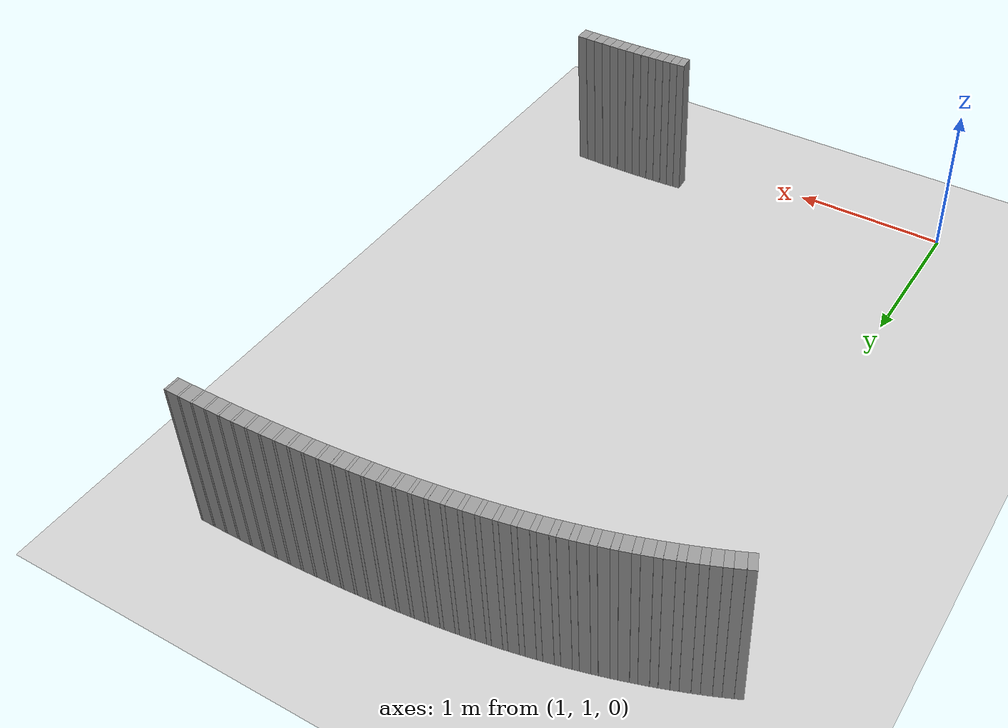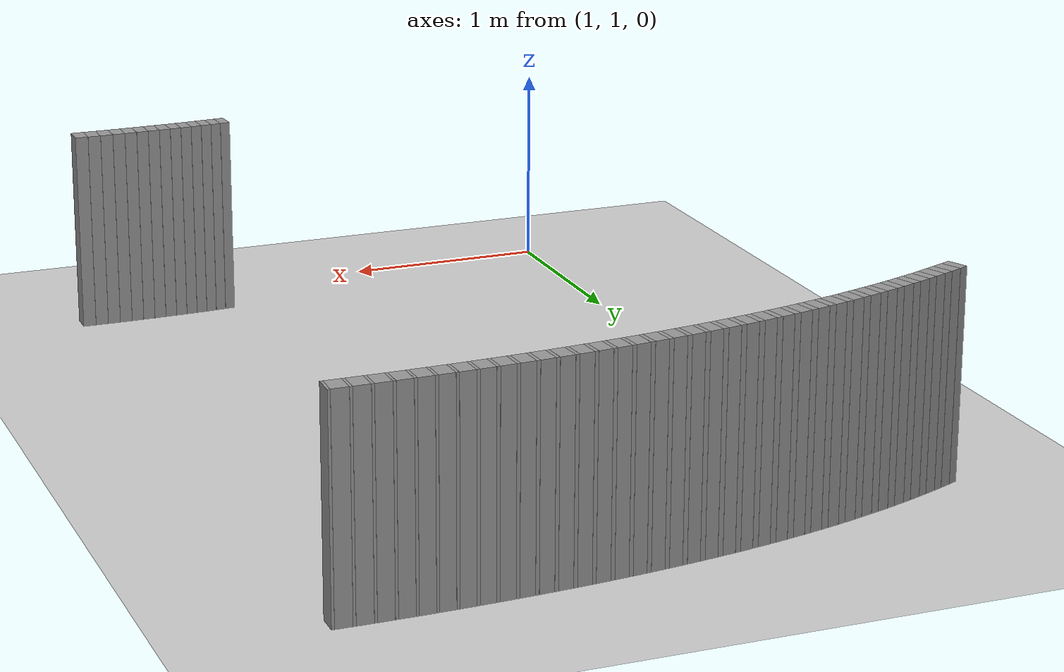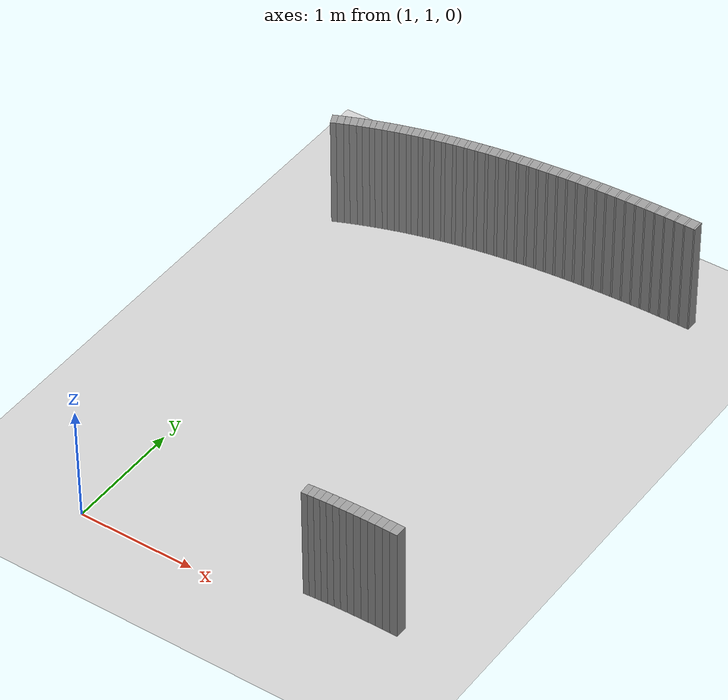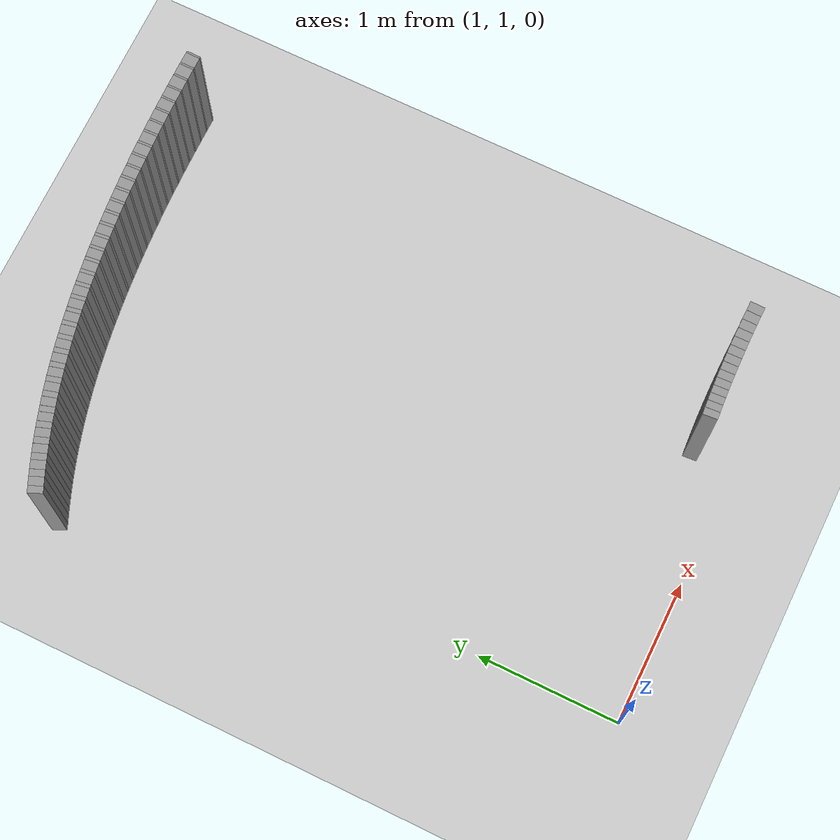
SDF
<sdf version="1.6">
 <world name="default">
  <include><uri>model://ground_plane</uri></include>
  <include><uri>model://sun</uri></include>
  <model name="wall_119_outward">
   <static>true</static>
   <link name="link">
    <collision name="collision">
     <geometry><box><size>0.04762265644965786 0.1 1.0</size></box></geometry>
    </collision>
    <visual name="visual">
     <geometry><box><size>0.04762265644965786 0.1 1.0</size></box></geometry>
     <material>
      <script><uri>file://media/materials/scripts/gazebo.material</uri><name>Gazebo/Gray</name></script>
     </material>
    </visual>
   </link>
   <pose>0.5797833847505576 4.842832066262517 0.5 0 0 0.4146070068785347</pose>
  </model>
  <model name="wall_120_outward">
   <static>true</static>
   <link name="link">
    <collision name="collision">
     <geometry><box><size>0.05895322775954115 0.1 1.0</size></box></geometry>
    </collision>
    <visual name="visual">
     <geometry><box><size>0.05895322775954115 0.1 1.0</size></box></geometry>
     <material>
      <script><uri>file://media/materials/scripts/gazebo.material</uri><name>Gazebo/Gray</name></script>
     </material>
    </visual>
   </link>
   <pose>0.6286959465770047 4.863976015238602 0.5 0 0 0.4027010614870918</pose>
  </model>
  <model name="wall_121_outward">
   <static>true</static>
   <link name="link">
    <collision name="collision">
     <geometry><box><size>0.04657145449106034 0.1 1.0</size></box></geometry>
    </collision>
    <visual name="visual">
     <geometry><box><size>0.04657145449106034 0.1 1.0</size></box></geometry>
     <material>
      <script><uri>file://media/materials/scripts/gazebo.material</uri><name>Gazebo/Gray</name></script>
     </material>
    </visual>
   </link>
   <pose>0.6773424042749305 4.88440378427007 0.5 0 0 0.391057934804424</pose>
  </model>
  <model name="wall_122_outward">
   <static>true</static>
   <link name="link">
    <collision name="collision">
     <geometry><box><size>0.05882232847072643 0.1 1.0</size></box></geometry>
    </collision>
    <visual name="visual">
     <geometry><box><size>0.05882232847072643 0.1 1.0</size></box></geometry>
     <material>
      <script><uri>file://media/materials/scripts/gazebo.material</uri><name>Gazebo/Gray</name></script>
     </material>
    </visual>
   </link>
   <pose>0.7261896938768626 4.904172745548577 0.5 0 0 0.3794148081217399</pose>
  </model>
  <model name="wall_123_outward">
   <static>true</static>
   <link name="link">
    <collision name="collision">
     <geometry><box><size>0.0452449672787888 0.1 1.0</size></box></geometry>
    </collision>
    <visual name="visual">
     <geometry><box><size>0.0452449672787888 0.1 1.0</size></box></geometry>
     <material>
      <script><uri>file://media/materials/scripts/gazebo.material</uri><name>Gazebo/Gray</name></script>
     </material>
    </visual>
   </link>
   <pose>0.7746162194824742 4.923206583786676 0.5 0 0 0.36810332508687804</pose>
  </model>
  <model name="wall_124_outward">
   <static>true</static>
   <link name="link">
    <collision name="collision">
     <geometry><box><size>0.05879685199204302 0.1 1.0</size></box></geometry>
    </collision>
    <visual name="visual">
     <geometry><box><size>0.05879685199204302 0.1 1.0</size></box></geometry>
     <material>
      <script><uri>file://media/materials/scripts/gazebo.material</uri><name>Gazebo/Gray</name></script>
     </material>
    </visual>
   </link>
   <pose>0.823270234207086 4.9416151903742245 0.5 0 0 0.35679184205200604</pose>
  </model>
  <model name="wall_125_outward">
   <static>true</static>
   <link name="link">
    <collision name="collision">
     <geometry><box><size>0.043774570305771414 0.1 1.0</size></box></geometry>
    </collision>
    <visual name="visual">
     <geometry><box><size>0.043774570305771414 0.1 1.0</size></box></geometry>
     <material>
      <script><uri>file://media/materials/scripts/gazebo.material</uri><name>Gazebo/Gray</name></script>
     </material>
    </visual>
   </link>
   <pose>0.8714085131880618 4.959302847103714 0.5 0 0 0.3458479810226367</pose>
  </model>
  <model name="wall_126_outward">
   <static>true</static>
   <link name="link">
    <collision name="collision">
     <geometry><box><size>0.05886785435195718 0.1 1.0</size></box></geometry>
    </collision>
    <visual name="visual">
     <geometry><box><size>0.05886785435195718 0.1 1.0</size></box></geometry>
     <material>
      <script><uri>file://media/materials/scripts/gazebo.material</uri><name>Gazebo/Gray</name></script>
     </material>
    </visual>
   </link>
   <pose>0.9197984476116005 4.976396820430873 0.5 0 0 0.33490411999326986</pose>
  </model>
  <model name="wall_127_outward">
   <static>true</static>
   <link name="link">
    <collision name="collision">
     <geometry><box><size>0.042147625095521085 0.1 1.0</size></box></geometry>
    </collision>
    <visual name="visual">
     <geometry><box><size>0.042147625095521085 0.1 1.0</size></box></geometry>
     <material>
      <script><uri>file://media/materials/scripts/gazebo.material</uri><name>Gazebo/Gray</name></script>
     </material>
    </visual>
   </link>
   <pose>0.9675719487225262 4.992787534072441 0.5 0 0 0.3243670187305457</pose>
  </model>
  <model name="wall_128_outward">
   <static>true</static>
   <link name="link">
    <collision name="collision">
     <geometry><box><size>0.059025569022138645 0.1 1.0</size></box></geometry>
    </collision>
    <visual name="visual">
     <geometry><box><size>0.059025569022138645 0.1 1.0</size></box></geometry>
     <material>
      <script><uri>file://media/materials/scripts/gazebo.material</uri><name>Gazebo/Gray</name></script>
     </material>
    </visual>
   </link>
   <pose>1.0156181459933904 5.008614652425592 0.5 0 0 0.3138299174678047</pose>
  </model>
  <model name="wall_129_outward">
   <static>true</static>
   <link name="link">
    <collision name="collision">
     <geometry><box><size>0.04051001720465164 0.1 1.0</size></box></geometry>
    </collision>
    <visual name="visual">
     <geometry><box><size>0.04051001720465164 0.1 1.0</size></box></geometry>
     <material>
      <script><uri>file://media/materials/scripts/gazebo.material</uri><name>Gazebo/Gray</name></script>
     </material>
    </visual>
   </link>
   <pose>1.063017529637495 5.023782722430736 0.5 0 0 0.30370224003510615</pose>
  </model>
  <model name="wall_130_outward">
   <static>true</static>
   <link name="link">
    <collision name="collision">
     <geometry><box><size>0.05925627961401525 0.1 1.0</size></box></geometry>
    </collision>
    <visual name="visual">
     <geometry><box><size>0.05925627961401525 0.1 1.0</size></box></geometry>
     <material>
      <script><uri>file://media/materials/scripts/gazebo.material</uri><name>Gazebo/Gray</name></script>
     </material>
    </visual>
   </link>
   <pose>1.1107061028129799 5.038413748717486 0.5 0 0 0.2935745626024684</pose>
  </model>
  <model name="wall_131_outward">
   <static>true</static>
   <link name="link">
    <collision name="collision">
     <geometry><box><size>0.03879464730142519 0.1 1.0</size></box></geometry>
    </collision>
    <visual name="visual">
     <geometry><box><size>0.03879464730142519 0.1 1.0</size></box></geometry>
     <material>
      <script><uri>file://media/materials/scripts/gazebo.material</uri><name>Gazebo/Gray</name></script>
     </material>
    </visual>
   </link>
   <pose>1.1576876077202063 5.052420183074534 0.5 0 0 0.2838757487214525</pose>
  </model>
  <model name="wall_132_outward">
   <static>true</static>
   <link name="link">
    <collision name="collision">
     <geometry><box><size>0.05954619953206322 0.1 1.0</size></box></geometry>
    </collision>
    <visual name="visual">
     <geometry><box><size>0.05954619953206322 0.1 1.0</size></box></geometry>
     <material>
      <script><uri>file://media/materials/scripts/gazebo.material</uri><name>Gazebo/Gray</name></script>
     </material>
    </visual>
   </link>
   <pose>1.2049696209902983 5.065914160809498 0.5 0 0 0.2741769348404339</pose>
  </model>
  <model name="wall_133_outward">
   <static>true</static>
   <link name="link">
    <collision name="collision">
     <geometry><box><size>0.03710291891183191 0.1 1.0</size></box></geometry>
    </collision>
    <visual name="visual">
     <geometry><box><size>0.03710291891183191 0.1 1.0</size></box></geometry>
     <material>
      <script><uri>file://media/materials/scripts/gazebo.material</uri><name>Gazebo/Gray</name></script>
     </material>
    </visual>
   </link>
   <pose>1.25153500200694 5.078832395648469 0.5 0 0 0.26490107209464114</pose>
  </model>
  <model name="wall_134_outward">
   <static>true</static>
   <link name="link">
    <collision name="collision">
     <geometry><box><size>0.05988438573667741 0.1 1.0</size></box></geometry>
    </collision>
    <visual name="visual">
     <geometry><box><size>0.05988438573667741 0.1 1.0</size></box></geometry>
     <material>
      <script><uri>file://media/materials/scripts/gazebo.material</uri><name>Gazebo/Gray</name></script>
     </material>
    </visual>
   </link>
   <pose>1.2984085902910325 5.0912603175905815 0.5 0 0 0.2556252093488861</pose>
  </model>
  <model name="wall_135_outward">
   <static>true</static>
   <link name="link">
    <collision name="collision">
     <geometry><box><size>0.03538726925947709 0.1 1.0</size></box></geometry>
    </collision>
    <visual name="visual">
     <geometry><box><size>0.03538726925947709 0.1 1.0</size></box></geometry>
     <material>
      <script><uri>file://media/materials/scripts/gazebo.material</uri><name>Gazebo/Gray</name></script>
     </material>
    </visual>
   </link>
   <pose>1.344535419987682 5.103153432338603 0.5 0 0 0.24677827662886828</pose>
  </model>
  <model name="wall_136_outward">
   <static>true</static>
   <link name="link">
    <collision name="collision">
     <geometry><box><size>0.06026037292160499 0.1 1.0</size></box></geometry>
    </collision>
    <visual name="visual">
     <geometry><box><size>0.06026037292160499 0.1 1.0</size></box></geometry>
     <material>
      <script><uri>file://media/materials/scripts/gazebo.material</uri><name>Gazebo/Gray</name></script>
     </material>
    </visual>
   </link>
   <pose>1.3909743638176582 5.114577119753884 0.5 0 0 0.23793134390880907</pose>
  </model>
  <model name="wall_137_outward">
   <static>true</static>
   <link name="link">
    <collision name="collision">
     <geometry><box><size>0.033659648572413735 0.1 1.0</size></box></geometry>
    </collision>
    <visual name="visual">
     <geometry><box><size>0.033659648572413735 0.1 1.0</size></box></geometry>
     <material>
      <script><uri>file://media/materials/scripts/gazebo.material</uri><name>Gazebo/Gray</name></script>
     </material>
    </visual>
   </link>
   <pose>1.436644199421238 5.1255074819411846 0.5 0 0 0.22951633245152978</pose>
  </model>
  <model name="wall_138_outward">
   <static>true</static>
   <link name="link">
    <collision name="collision">
     <geometry><box><size>0.0606666162380814 0.1 1.0</size></box></geometry>
    </collision>
    <visual name="visual">
     <geometry><box><size>0.0606666162380814 0.1 1.0</size></box></geometry>
     <material>
      <script><uri>file://media/materials/scripts/gazebo.material</uri><name>Gazebo/Gray</name></script>
     </material>
    </visual>
   </link>
   <pose>1.4826275773306308 5.135988601370437 0.5 0 0 0.22110132099422455</pose>
  </model>
  <model name="wall_139_outward">
   <static>true</static>
   <link name="link">
    <collision name="collision">
     <geometry><box><size>0.0319424232112226 0.1 1.0</size></box></geometry>
    </collision>
    <visual name="visual">
     <geometry><box><size>0.0319424232112226 0.1 1.0</size></box></geometry>
     <material>
      <script><uri>file://media/materials/scripts/gazebo.material</uri><name>Gazebo/Gray</name></script>
     </material>
    </visual>
   </link>
   <pose>1.5278323569214356 5.146018833403613 0.5 0 0 0.21311563031542954</pose>
  </model>
  <model name="wall_140_outward">
   <static>true</static>
   <link name="link">
    <collision name="collision">
     <geometry><box><size>0.061098177029552524 0.1 1.0</size></box></geometry>
    </collision>
    <visual name="visual">
     <geometry><box><size>0.061098177029552524 0.1 1.0</size></box></geometry>
     <material>
      <script><uri>file://media/materials/scripts/gazebo.material</uri><name>Gazebo/Gray</name></script>
     </material>
    </visual>
   </link>
   <pose>1.5733508591310152 5.155619519091482 0.5 0 0 0.20512993963664014</pose>
  </model>
  <model name="wall_141_outward">
   <static>true</static>
   <link name="link">
    <collision name="collision">
     <geometry><box><size>0.030238337913072164 0.1 1.0</size></box></geometry>
    </collision>
    <visual name="visual">
     <geometry><box><size>0.030238337913072164 0.1 1.0</size></box></geometry>
     <material>
      <script><uri>file://media/materials/scripts/gazebo.material</uri><name>Gazebo/Gray</name></script>
     </material>
    </visual>
   </link>
   <pose>1.6180845180991499 5.164809899953543 0.5 0 0 0.1975702831548393</pose>
  </model>
  <model name="wall_142_outward">
   <static>true</static>
   <link name="link">
    <collision name="collision">
     <geometry><box><size>0.0615530927524307 0.1 1.0</size></box></geometry>
    </collision>
    <visual name="visual">
     <geometry><box><size>0.0615530927524307 0.1 1.0</size></box></geometry>
     <material>
      <script><uri>file://media/materials/scripts/gazebo.material</uri><name>Gazebo/Gray</name></script>
     </material>
    </visual>
   </link>
   <pose>1.6631322018250836 5.173590348968443 0.5 0 0 0.19001062667307594</pose>
  </model>
  <model name="wall_143_outward">
   <static>true</static>
   <link name="link">
    <collision name="collision">
     <geometry><box><size>0.028532402801629907 0.1 1.0</size></box></geometry>
    </collision>
    <visual name="visual">
     <geometry><box><size>0.028532402801629907 0.1 1.0</size></box></geometry>
     <material>
      <script><uri>file://media/materials/scripts/gazebo.material</uri><name>Gazebo/Gray</name></script>
     </material>
    </visual>
   </link>
   <pose>1.7073831438584124 5.181997543274074 0.5 0 0 0.18287746548124814</pose>
  </model>
  <model name="wall_144_outward">
   <static>true</static>
   <link name="link">
    <collision name="collision">
     <geometry><box><size>0.06203019131444678 0.1 1.0</size></box></geometry>
    </collision>
    <visual name="visual">
     <geometry><box><size>0.06203019131444678 0.1 1.0</size></box></geometry>
     <material>
      <script><uri>file://media/materials/scripts/gazebo.material</uri><name>Gazebo/Gray</name></script>
     </material>
    </visual>
   </link>
   <pose>1.7519488088886959 5.190014703003735 0.5 0 0 0.17574430428942667</pose>
  </model>
  <model name="wall_145_outward">
   <static>true</static>
   <link name="link">
    <collision name="collision">
     <geometry><box><size>0.026872211705928677 0.1 1.0</size></box></geometry>
    </collision>
    <visual name="visual">
     <geometry><box><size>0.026872211705928677 0.1 1.0</size></box></geometry>
     <material>
      <script><uri>file://media/materials/scripts/gazebo.material</uri><name>Gazebo/Gray</name></script>
     </material>
    </visual>
   </link>
   <pose>1.7957307975705448 5.1976976695498935 0.5 0 0 0.1690262008284723</pose>
  </model>
  <model name="wall_146_outward">
   <static>true</static>
   <link name="link">
    <collision name="collision">
     <geometry><box><size>0.06252992379287395 0.1 1.0</size></box></geometry>
    </collision>
    <visual name="visual">
     <geometry><box><size>0.06252992379287395 0.1 1.0</size></box></geometry>
     <material>
      <script><uri>file://media/materials/scripts/gazebo.material</uri><name>Gazebo/Gray</name></script>
     </material>
    </visual>
   </link>
   <pose>1.8398294705206024 5.205010230157988 0.5 0 0 0.16230809736749488</pose>
  </model>
  <model name="wall_147_outward">
   <static>true</static>
   <link name="link">
    <collision name="collision">
     <geometry><box><size>0.025281368365310496 0.1 1.0</size></box></geometry>
    </collision>
    <visual name="visual">
     <geometry><box><size>0.025281368365310496 0.1 1.0</size></box></geometry>
     <material>
      <script><uri>file://media/materials/scripts/gazebo.material</uri><name>Gazebo/Gray</name></script>
     </material>
    </visual>
   </link>
   <pose>1.883170723045893 5.212026340165581 0.5 0 0 0.15598771319593382</pose>
  </model>
  <model name="wall_148_outward">
   <static>true</static>
   <link name="link">
    <collision name="collision">
     <geometry><box><size>0.0630532704960234 0.1 1.0</size></box></geometry>
    </collision>
    <visual name="visual">
     <geometry><box><size>0.0630532704960234 0.1 1.0</size></box></geometry>
     <material>
      <script><uri>file://media/materials/scripts/gazebo.material</uri><name>Gazebo/Gray</name></script>
     </material>
    </visual>
   </link>
   <pose>1.9268321218902538 5.218691055987509 0.5 0 0 0.1496673290243324</pose>
  </model>
  <model name="wall_149_outward">
   <static>true</static>
   <link name="link">
    <collision name="collision">
     <geometry><box><size>0.023785309874644202 0.1 1.0</size></box></geometry>
    </collision>
    <visual name="visual">
     <geometry><box><size>0.023785309874644202 0.1 1.0</size></box></geometry>
     <material>
      <script><uri>file://media/materials/scripts/gazebo.material</uri><name>Gazebo/Gray</name></script>
     </material>
    </visual>
   </link>
   <pose>1.9697763531498493 5.225095312722985 0.5 0 0 0.14372096651260793</pose>
  </model>
  <model name="wall_150_outward">
   <static>true</static>
   <link name="link">
    <collision name="collision">
     <geometry><box><size>0.06360075275686539 0.1 1.0</size></box></geometry>
    </collision>
    <visual name="visual">
     <geometry><box><size>0.06360075275686539 0.1 1.0</size></box></geometry>
     <material>
      <script><uri>file://media/materials/scripts/gazebo.material</uri><name>Gazebo/Gray</name></script>
     </material>
    </visual>
   </link>
   <pose>2.0130454323510447 5.231166095056553 0.5 0 0 0.13777460400088043</pose>
  </model>
  <model name="wall_151_outward">
   <static>true</static>
   <link name="link">
    <collision name="collision">
     <geometry><box><size>0.02242338525385486 0.1 1.0</size></box></geometry>
    </collision>
    <visual name="visual">
     <geometry><box><size>0.02242338525385486 0.1 1.0</size></box></geometry>
     <material>
      <script><uri>file://media/materials/scripts/gazebo.material</uri><name>Gazebo/Gray</name></script>
     </material>
    </visual>
   </link>
   <pose>2.055658379954457 5.237011056327135 0.5 0 0 0.13216872832590157</pose>
  </model>
  <model name="wall_152_outward">
   <static>true</static>
   <link name="link">
    <collision name="collision">
     <geometry><box><size>0.0641728887554186 0.1 1.0</size></box></geometry>
    </collision>
    <visual name="visual">
     <geometry><box><size>0.0641728887554186 0.1 1.0</size></box></geometry>
     <material>
      <script><uri>file://media/materials/scripts/gazebo.material</uri><name>Gazebo/Gray</name></script>
     </material>
    </visual>
   </link>
   <pose>2.098602093313448 5.24253870011133 0.5 0 0 0.12656285265092393</pose>
  </model>
  <model name="wall_153_outward">
   <static>true</static>
   <link name="link">
    <collision name="collision">
     <geometry><box><size>0.02123787551669319 0.1 1.0</size></box></geometry>
    </collision>
    <visual name="visual">
     <geometry><box><size>0.02123787551669319 0.1 1.0</size></box></geometry>
     <material>
      <script><uri>file://media/materials/scripts/gazebo.material</uri><name>Gazebo/Gray</name></script>
     </material>
    </visual>
   </link>
   <pose>2.140972869249545 5.247873248332778 0.5 0 0 0.12125335882537115</pose>
  </model>
  <model name="wall_154_outward">
   <static>true</static>
   <link name="link">
    <collision name="collision">
     <geometry><box><size>0.06476873711564796 0.1 1.0</size></box></geometry>
    </collision>
    <visual name="visual">
     <geometry><box><size>0.06476873711564796 0.1 1.0</size></box></geometry>
     <material>
      <script><uri>file://media/materials/scripts/gazebo.material</uri><name>Gazebo/Gray</name></script>
     </material>
    </visual>
   </link>
   <pose>2.1836807818766486 5.252904039397849 0.5 0 0 0.11594386499982155</pose>
  </model>
  <model name="wall_155_outward">
   <static>true</static>
   <link name="link">
    <collision name="collision">
     <geometry><box><size>0.020182504089860945 0.1 1.0</size></box></geometry>
    </collision>
    <visual name="visual">
     <geometry><box><size>0.020182504089860945 0.1 1.0</size></box></geometry>
     <material>
      <script><uri>file://media/materials/scripts/gazebo.material</uri><name>Gazebo/Gray</name></script>
     </material>
    </visual>
   </link>
   <pose>2.2258769853785076 5.257767210771512 0.5 0 0 0.1108982175682198</pose>
  </model>
  <model name="wall_156_outward">
   <static>true</static>
   <link name="link">
    <collision name="collision">
     <geometry><box><size>0.06538846888942072 0.1 1.0</size></box></geometry>
    </collision>
    <visual name="visual">
     <geometry><box><size>0.06538846888942072 0.1 1.0</size></box></geometry>
     <material>
      <script><uri>file://media/materials/scripts/gazebo.material</uri><name>Gazebo/Gray</name></script>
     </material>
    </visual>
   </link>
   <pose>2.268417487567723 5.2623383296967114 0.5 0 0 0.10585257013664288</pose>
  </model>
  <model name="wall_157_outward">
   <static>true</static>
   <link name="link">
    <collision name="collision">
     <geometry><box><size>0.019306332068797425 0.1 1.0</size></box></geometry>
    </collision>
    <visual name="visual">
     <geometry><box><size>0.019306332068797425 0.1 1.0</size></box></geometry>
     <material>
      <script><uri>file://media/materials/scripts/gazebo.material</uri><name>Gazebo/Gray</name></script>
     </material>
    </visual>
   </link>
   <pose>2.3105326739656746 5.266766201612984 0.5 0 0 0.10102596837936093</pose>
  </model>
  <model name="wall_158_outward">
   <static>true</static>
   <link name="link">
    <collision name="collision">
     <geometry><box><size>0.06602924519439453 0.1 1.0</size></box></geometry>
    </collision>
    <visual name="visual">
     <geometry><box><size>0.06602924519439453 0.1 1.0</size></box></geometry>
     <material>
      <script><uri>file://media/materials/scripts/gazebo.material</uri><name>Gazebo/Gray</name></script>
     </material>
    </visual>
   </link>
   <pose>2.3529985970495453 5.2709108534680045 0.5 0 0 0.09619936662197372</pose>
  </model>
  <model name="wall_159_outward">
   <static>true</static>
   <link name="link">
    <collision name="collision">
     <geometry><box><size>0.018584842609670846 0.1 1.0</size></box></geometry>
    </collision>
    <visual name="visual">
     <geometry><box><size>0.018584842609670846 0.1 1.0</size></box></geometry>
     <material>
      <script><uri>file://media/materials/scripts/gazebo.material</uri><name>Gazebo/Gray</name></script>
     </material>
    </visual>
   </link>
   <pose>2.3951140775781203 5.274931505264844 0.5 0 0 0.09155313925289925</pose>
  </model>
  <model name="wall_160_outward">
   <static>true</static>
   <link name="link">
    <collision name="collision">
     <geometry><box><size>0.06668904209504577 0.1 1.0</size></box></geometry>
    </collision>
    <visual name="visual">
     <geometry><box><size>0.06668904209504577 0.1 1.0</size></box></geometry>
     <material>
      <script><uri>file://media/materials/scripts/gazebo.material</uri><name>Gazebo/Gray</name></script>
     </material>
    </visual>
   </link>
   <pose>2.4375862594907565 5.278675290495947 0.5 0 0 0.08690691188381355</pose>
  </model>
  <model name="wall_161_outward">
   <static>true</static>
   <link name="link">
    <collision name="collision">
     <geometry><box><size>0.01793977418900985 0.1 1.0</size></box></geometry>
    </collision>
    <visual name="visual">
     <geometry><box><size>0.01793977418900985 0.1 1.0</size></box></geometry>
     <material>
      <script><uri>file://media/materials/scripts/gazebo.material</uri><name>Gazebo/Gray</name></script>
     </material>
    </visual>
   </link>
   <pose>2.4797443737561817 5.282307992206722 0.5 0 0 0.08242195330084094</pose>
  </model>
  <model name="wall_162_outward">
   <static>true</static>
   <link name="link">
    <collision name="collision">
     <geometry><box><size>0.06736704681834979 0.1 1.0</size></box></geometry>
    </collision>
    <visual name="visual">
     <geometry><box><size>0.06736704681834979 0.1 1.0</size></box></geometry>
     <material>
      <script><uri>file://media/materials/scripts/gazebo.material</uri><name>Gazebo/Gray</name></script>
     </material>
    </visual>
   </link>
   <pose>2.5222650855471502 5.285669006777564 0.5 0 0 0.07793699471791722</pose>
  </model>
  <model name="wall_163_outward">
   <static>true</static>
   <link name="link">
    <collision name="collision">
     <geometry><box><size>0.017421640762746708 0.1 1.0</size></box></geometry>
    </collision>
    <visual name="visual">
     <geometry><box><size>0.017421640762746708 0.1 1.0</size></box></geometry>
     <material>
      <script><uri>file://media/materials/scripts/gazebo.material</uri><name>Gazebo/Gray</name></script>
     </material>
    </visual>
   </link>
   <pose>2.56453361066778 5.288931920144555 0.5 0 0 0.07358157075704026</pose>
  </model>
  <model name="wall_164_outward">
   <static>true</static>
   <link name="link">
    <collision name="collision">
     <geometry><box><size>0.0680597701374139 0.1 1.0</size></box></geometry>
    </collision>
    <visual name="visual">
     <geometry><box><size>0.0680597701374139 0.1 1.0</size></box></geometry>
     <material>
      <script><uri>file://media/materials/scripts/gazebo.material</uri><name>Gazebo/Gray</name></script>
     </material>
    </visual>
   </link>
   <pose>2.6071692380264366 5.291926174468011 0.5 0 0 0.06922614679617549</pose>
  </model>
  <model name="wall_165_outward">
   <static>true</static>
   <link name="link">
    <collision name="collision">
     <geometry><box><size>0.016882846905881554 0.1 1.0</size></box></geometry>
    </collision>
    <visual name="visual">
     <geometry><box><size>0.016882846905881554 0.1 1.0</size></box></geometry>
     <material>
      <script><uri>file://media/materials/scripts/gazebo.material</uri><name>Gazebo/Gray</name></script>
     </material>
    </visual>
   </link>
   <pose>2.649541209885253 5.294828403083274 0.5 0 0 0.065005422538012</pose>
  </model>
  <model name="wall_166_outward">
   <static>true</static>
   <link name="link">
    <collision name="collision">
     <geometry><box><size>0.0687664869602489 0.1 1.0</size></box></geometry>
    </collision>
    <visual name="visual">
     <geometry><box><size>0.0687664869602489 0.1 1.0</size></box></geometry>
     <material>
      <script><uri>file://media/materials/scripts/gazebo.material</uri><name>Gazebo/Gray</name></script>
     </material>
    </visual>
   </link>
   <pose>2.6922845479182937 5.297465443314641 0.5 0 0 0.06078469827987437</pose>
  </model>
  <model name="wall_167_outward">
   <static>true</static>
   <link name="link">
    <collision name="collision">
     <geometry><box><size>0.016376934774833585 0.1 1.0</size></box></geometry>
    </collision>
    <visual name="visual">
     <geometry><box><size>0.016376934774833585 0.1 1.0</size></box></geometry>
     <material>
      <script><uri>file://media/materials/scripts/gazebo.material</uri><name>Gazebo/Gray</name></script>
     </material>
    </visual>
   </link>
   <pose>2.7347796045332675 5.300018090954584 0.5 0 0 0.056690453147635066</pose>
  </model>
  <model name="wall_168_outward">
   <static>true</static>
   <link name="link">
    <collision name="collision">
     <geometry><box><size>0.06948693209766212 0.1 1.0</size></box></geometry>
    </collision>
    <visual name="visual">
     <geometry><box><size>0.06948693209766212 0.1 1.0</size></box></geometry>
     <material>
      <script><uri>file://media/materials/scripts/gazebo.material</uri><name>Gazebo/Gray</name></script>
     </material>
    </visual>
   </link>
   <pose>2.777650338005245 5.302308582429854 0.5 0 0 0.05259620801541364</pose>
  </model>
  <model name="wall_169_outward">
   <static>true</static>
   <link name="link">
    <collision name="collision">
     <geometry><box><size>0.015840079443446294 0.1 1.0</size></box></geometry>
    </collision>
    <visual name="visual">
     <geometry><box><size>0.015840079443446294 0.1 1.0</size></box></geometry>
     <material>
      <script><uri>file://media/materials/scripts/gazebo.material</uri><name>Gazebo/Gray</name></script>
     </material>
    </visual>
   </link>
   <pose>2.820256432874147 5.30452016319844 0.5 0 0 0.04863617780447872</pose>
  </model>
  <model name="wall_170_outward">
   <static>true</static>
   <link name="link">
    <collision name="collision">
     <geometry><box><size>0.07022046838938732 0.1 1.0</size></box></geometry>
    </collision>
    <visual name="visual">
     <geometry><box><size>0.07022046838938732 0.1 1.0</size></box></geometry>
     <material>
      <script><uri>file://media/materials/scripts/gazebo.material</uri><name>Gazebo/Gray</name></script>
     </material>
    </visual>
   </link>
   <pose>2.8632423078463063 5.306473280062996 0.5 0 0 0.04467614759352086</pose>
  </model>
  <model name="wall_171_outward">
   <static>true</static>
   <link name="link">
    <collision name="collision">
     <geometry><box><size>0.01527519059037652 0.1 1.0</size></box></geometry>
    </collision>
    <visual name="visual">
     <geometry><box><size>0.01527519059037652 0.1 1.0</size></box></geometry>
     <material>
      <script><uri>file://media/materials/scripts/gazebo.material</uri><name>Gazebo/Gray</name></script>
     </material>
    </visual>
   </link>
   <pose>2.9059487299673226 5.308353313334219 0.5 0 0 0.040857340664113076</pose>
  </model>
  <model name="wall_172_outward">
   <static>true</static>
   <link name="link">
    <collision name="collision">
     <geometry><box><size>0.07096758608684636 0.1 1.0</size></box></geometry>
    </collision>
    <visual name="visual">
     <geometry><box><size>0.07096758608684636 0.1 1.0</size></box></geometry>
     <material>
      <script><uri>file://media/materials/scripts/gazebo.material</uri><name>Gazebo/Gray</name></script>
     </material>
    </visual>
   </link>
   <pose>2.949039407897395 5.309979245544401 0.5 0 0 0.03703853373476124</pose>
  </model>
  <model name="wall_173_outward">
   <static>true</static>
   <link name="link">
    <collision name="collision">
     <geometry><box><size>0.014677599365543909 0.1 1.0</size></box></geometry>
    </collision>
    <visual name="visual">
     <geometry><box><size>0.014677599365543909 0.1 1.0</size></box></geometry>
     <material>
      <script><uri>file://media/materials/scripts/gazebo.material</uri><name>Gazebo/Gray</name></script>
     </material>
    </visual>
   </link>
   <pose>2.9918335786400467 5.311538056617698 0.5 0 0 0.03336912565889864</pose>
  </model>
  <model name="wall_174_outward">
   <static>true</static>
   <link name="link">
    <collision name="collision">
     <geometry><box><size>0.07172820410647458 0.1 1.0</size></box></geometry>
    </collision>
    <visual name="visual">
     <geometry><box><size>0.07172820410647458 0.1 1.0</size></box></geometry>
     <material>
      <script><uri>file://media/materials/scripts/gazebo.material</uri><name>Gazebo/Gray</name></script>
     </material>
    </visual>
   </link>
   <pose>3.035016578664352 5.312847897620371 0.5 0 0 0.029699717583017263</pose>
  </model>
  <model name="wall_175_outward">
   <static>true</static>
   <link name="link">
    <collision name="collision">
     <geometry><box><size>0.014114735006519835 0.1 1.0</size></box></geometry>
    </collision>
    <visual name="visual">
     <geometry><box><size>0.014114735006519835 0.1 1.0</size></box></geometry>
     <material>
      <script><uri>file://media/materials/scripts/gazebo.material</uri><name>Gazebo/Gray</name></script>
     </material>
    </visual>
   </link>
   <pose>3.0779198152640124 5.314097572207727 0.5 0 0 0.026171026508403163</pose>
  </model>
  <model name="wall_176_outward">
   <static>true</static>
   <link name="link">
    <collision name="collision">
     <geometry><box><size>0.07250218317329267 0.1 1.0</size></box></geometry>
    </collision>
    <visual name="visual">
     <geometry><box><size>0.07250218317329267 0.1 1.0</size></box></geometry>
     <material>
      <script><uri>file://media/materials/scripts/gazebo.material</uri><name>Gazebo/Gray</name></script>
     </material>
    </visual>
   </link>
   <pose>3.121216565492906 5.315102988918972 0.5 0 0 0.022642335433745227</pose>
  </model>
  <model name="wall_177_outward">
   <static>true</static>
   <link name="link">
    <collision name="collision">
     <geometry><box><size>0.013543988715048524 0.1 1.0</size></box></geometry>
    </collision>
    <visual name="visual">
     <geometry><box><size>0.013543988715048524 0.1 1.0</size></box></geometry>
     <material>
      <script><uri>file://media/materials/scripts/gazebo.material</uri><name>Gazebo/Gray</name></script>
     </material>
    </visual>
   </link>
   <pose>3.164229103803134 5.316054123872778 0.5 0 0 0.019256331784886598</pose>
  </model>
  <model name="wall_178_outward">
   <static>true</static>
   <link name="link">
    <collision name="collision">
     <geometry><box><size>0.07328955224679069 0.1 1.0</size></box></geometry>
    </collision>
    <visual name="visual">
     <geometry><box><size>0.07328955224679069 0.1 1.0</size></box></geometry>
     <material>
      <script><uri>file://media/materials/scripts/gazebo.material</uri><name>Gazebo/Gray</name></script>
     </material>
    </visual>
   </link>
   <pose>3.2076400040598885 5.316766059793034 0.5 0 0 0.01587032813602774</pose>
  </model>
  <model name="wall_179_outward">
   <static>true</static>
   <link name="link">
    <collision name="collision">
     <geometry><box><size>0.01309129061354823 0.1 1.0</size></box></geometry>
    </collision>
    <visual name="visual">
     <geometry><box><size>0.01309129061354823 0.1 1.0</size></box></geometry>
     <material>
      <script><uri>file://media/materials/scripts/gazebo.material</uri><name>Gazebo/Gray</name></script>
     </material>
    </visual>
   </link>
   <pose>3.2508252913959703 5.317430056585457 0.5 0 0 0.01259749963985914</pose>
  </model>
  <model name="wall_180_outward">
   <static>true</static>
   <link name="link">
    <collision name="collision">
     <geometry><box><size>0.07408761208340107 0.1 1.0</size></box></geometry>
    </collision>
    <visual name="visual">
     <geometry><box><size>0.07408761208340107 0.1 1.0</size></box></geometry>
     <material>
      <script><uri>file://media/materials/scripts/gazebo.material</uri><name>Gazebo/Gray</name></script>
     </material>
    </visual>
   </link>
   <pose>3.294412612905798 5.3178579294724475 0.5 0 0 0.009324671143727812</pose>
  </model>
  <model name="wall_181_outward">
   <static>true</static>
   <link name="link">
    <collision name="collision">
     <geometry><box><size>0.012719499001997947 0.1 1.0</size></box></geometry>
    </collision>
    <visual name="visual">
     <geometry><box><size>0.012719499001997947 0.1 1.0</size></box></geometry>
     <material>
      <script><uri>file://media/materials/scripts/gazebo.material</uri><name>Gazebo/Gray</name></script>
     </material>
    </visual>
   </link>
   <pose>3.337814437923323 5.318242424861804 0.5 0 0 0.006144791034263452</pose>
  </model>
  <model name="wall_182_outward">
   <static>true</static>
   <link name="link">
    <collision name="collision">
     <geometry><box><size>0.07489355697404253 0.1 1.0</size></box></geometry>
    </collision>
    <visual name="visual">
     <geometry><box><size>0.07489355697404253 0.1 1.0</size></box></geometry>
     <material>
      <script><uri>file://media/materials/scripts/gazebo.material</uri><name>Gazebo/Gray</name></script>
     </material>
    </visual>
   </link>
   <pose>3.3816206812530405 5.318392530147557 0.5 0 0 0.002964910924802611</pose>
  </model>
  <model name="wall_183_outward">
   <static>true</static>
   <link name="link">
    <collision name="collision">
     <geometry><box><size>0.0125098732633793 0.1 1.0</size></box></geometry>
    </collision>
    <visual name="visual">
     <geometry><box><size>0.0125098732633793 0.1 1.0</size></box></geometry>
     <material>
      <script><uri>file://media/materials/scripts/gazebo.material</uri><name>Gazebo/Gray</name></script>
     </material>
    </visual>
   </link>
   <pose>3.425322231697586 5.318502539529461 0.5 0 0 -0.00016256248938310082</pose>
  </model>
  <model name="wall_184_outward">
   <static>true</static>
   <link name="link">
    <collision name="collision">
     <geometry><box><size>0.07569972960149485 0.1 1.0</size></box></geometry>
    </collision>
    <visual name="visual">
     <geometry><box><size>0.07569972960149485 0.1 1.0</size></box></geometry>
     <material>
      <script><uri>file://media/materials/scripts/gazebo.material</uri><name>Gazebo/Gray</name></script>
     </material>
    </visual>
   </link>
   <pose>3.469426828197728 5.318376995521909 0.5 0 0 -0.0032900359035816147</pose>
  </model>
  <model name="wall_185_outward">
   <static>true</static>
   <link name="link">
    <collision name="collision">
     <geometry><box><size>0.012448342850277141 0.1 1.0</size></box></geometry>
    </collision>
    <visual name="visual">
     <geometry><box><size>0.012448342850277141 0.1 1.0</size></box></geometry>
     <material>
      <script><uri>file://media/materials/scripts/gazebo.material</uri><name>Gazebo/Gray</name></script>
     </material>
    </visual>
   </link>
   <pose>3.513500532018644 5.318212620670942 0.5 0 0 -0.006402126639611717</pose>
  </model>
  <model name="wall_186_outward">
   <static>true</static>
   <link name="link">
    <collision name="collision">
     <geometry><box><size>0.07649853236690068 0.1 1.0</size></box></geometry>
    </collision>
    <visual name="visual">
     <geometry><box><size>0.07649853236690068 0.1 1.0</size></box></geometry>
     <material>
      <script><uri>file://media/materials/scripts/gazebo.material</uri><name>Gazebo/Gray</name></script>
     </material>
    </visual>
   </link>
   <pose>3.5579721109168263 5.317808866666742 0.5 0 0 -0.009514217375694484</pose>
  </model>
  <model name="wall_187_outward">
   <static>true</static>
   <link name="link">
    <collision name="collision">
     <geometry><box><size>0.012575640494390429 0.1 1.0</size></box></geometry>
    </collision>
    <visual name="visual">
     <geometry><box><size>0.012575640494390429 0.1 1.0</size></box></geometry>
     <material>
      <script><uri>file://media/materials/scripts/gazebo.material</uri><name>Gazebo/Gray</name></script>
     </material>
    </visual>
   </link>
   <pose>3.602506962455668 5.317365370386543 0.5 0 0 -0.012658132678467271</pose>
  </model>
  <model name="wall_65_inward">
   <static>true</static>
   <link name="link">
    <collision name="collision">
     <geometry><box><size>0.04968616650616507 0.1 1.0</size></box></geometry>
    </collision>
    <visual name="visual">
     <geometry><box><size>0.04968616650616507 0.1 1.0</size></box></geometry>
     <material>
      <script><uri>file://media/materials/scripts/gazebo.material</uri><name>Gazebo/Gray</name></script>
     </material>
    </visual>
   </link>
   <pose>2.8338267022217756 1.2978212945655034 0.5 0 0 0.07793699471791274</pose>
  </model>
  <model name="wall_66_inward">
   <static>true</static>
   <link name="link">
    <collision name="collision">
     <geometry><box><size>0.05090736849102881 0.1 1.0</size></box></geometry>
    </collision>
    <visual name="visual">
     <geometry><box><size>0.05090736849102881 0.1 1.0</size></box></geometry>
     <material>
      <script><uri>file://media/materials/scripts/gazebo.material</uri><name>Gazebo/Gray</name></script>
     </material>
    </visual>
   </link>
   <pose>2.8839870913090127 1.3015161837216085 0.5 0 0 0.06922614679617412</pose>
  </model>
  <model name="wall_67_inward">
   <static>true</static>
   <link name="link">
    <collision name="collision">
     <geometry><box><size>0.05213645229797598 0.1 1.0</size></box></geometry>
    </collision>
    <visual name="visual">
     <geometry><box><size>0.05213645229797598 0.1 1.0</size></box></geometry>
     <material>
      <script><uri>file://media/materials/scripts/gazebo.material</uri><name>Gazebo/Gray</name></script>
     </material>
    </visual>
   </link>
   <pose>2.9353998923792353 1.304860410847097 0.5 0 0 0.06078469827987227</pose>
  </model>
  <model name="wall_68_inward">
   <static>true</static>
   <link name="link">
    <collision name="collision">
     <geometry><box><size>0.053378294256231903 0.1 1.0</size></box></geometry>
    </collision>
    <visual name="visual">
     <geometry><box><size>0.053378294256231903 0.1 1.0</size></box></geometry>
     <material>
      <script><uri>file://media/materials/scripts/gazebo.material</uri><name>Gazebo/Gray</name></script>
     </material>
    </visual>
   </link>
   <pose>2.9880722149082297 1.307847085339807 0.5 0 0 0.05259620801541348</pose>
  </model>
  <model name="wall_69_inward">
   <static>true</static>
   <link name="link">
    <collision name="collision">
     <geometry><box><size>0.05466271558068055 0.1 1.0</size></box></geometry>
    </collision>
    <visual name="visual">
     <geometry><box><size>0.05466271558068055 0.1 1.0</size></box></geometry>
     <material>
      <script><uri>file://media/materials/scripts/gazebo.material</uri><name>Gazebo/Gray</name></script>
     </material>
    </visual>
   </link>
   <pose>3.0420285408401346 1.3104708397688847 0.5 0 0 0.04467614759352127</pose>
  </model>
  <model name="wall_70_inward">
   <static>true</static>
   <link name="link">
    <collision name="collision">
     <geometry><box><size>0.055991086010855604 0.1 1.0</size></box></geometry>
    </collision>
    <visual name="visual">
     <geometry><box><size>0.055991086010855604 0.1 1.0</size></box></geometry>
     <material>
      <script><uri>file://media/materials/scripts/gazebo.material</uri><name>Gazebo/Gray</name></script>
     </material>
    </visual>
   </link>
   <pose>3.097308969359707 1.312728170184684 0.5 0 0 0.03703853373476347</pose>
  </model>
  <model name="wall_71_inward">
   <static>true</static>
   <link name="link">
    <collision name="collision">
     <geometry><box><size>0.05733194357513421 0.1 1.0</size></box></geometry>
    </collision>
    <visual name="visual">
     <geometry><box><size>0.05733194357513421 0.1 1.0</size></box></geometry>
     <material>
      <script><uri>file://media/materials/scripts/gazebo.material</uri><name>Gazebo/Gray</name></script>
     </material>
    </visual>
   </link>
   <pose>3.153938641649537 1.314616093092633 0.5 0 0 0.02969971758301592</pose>
  </model>
  <model name="wall_72_inward">
   <static>true</static>
   <link name="link">
    <collision name="collision">
     <geometry><box><size>0.058672738553575146 0.1 1.0</size></box></geometry>
    </collision>
    <visual name="visual">
     <geometry><box><size>0.058672738553575146 0.1 1.0</size></box></geometry>
     <material>
      <script><uri>file://media/materials/scripts/gazebo.material</uri><name>Gazebo/Gray</name></script>
     </material>
    </visual>
   </link>
   <pose>3.2119208212046204 1.3161315263606341 0.5 0 0 0.022642335433745886</pose>
  </model>
  <model name="wall_73_inward">
   <static>true</static>
   <link name="link">
    <collision name="collision">
     <geometry><box><size>0.05997183870505888 0.1 1.0</size></box></geometry>
    </collision>
    <visual name="visual">
     <geometry><box><size>0.05997183870505888 0.1 1.0</size></box></geometry>
     <material>
      <script><uri>file://media/materials/scripts/gazebo.material</uri><name>Gazebo/Gray</name></script>
     </material>
    </visual>
   </link>
   <pose>3.2712318139812178 1.317271579921881 0.5 0 0 0.015870328136028358</pose>
  </model>
  <model name="wall_74_inward">
   <static>true</static>
   <link name="link">
    <collision name="collision">
     <geometry><box><size>0.0611821500650959 0.1 1.0</size></box></geometry>
    </collision>
    <visual name="visual">
     <geometry><box><size>0.0611821500650959 0.1 1.0</size></box></geometry>
     <material>
      <script><uri>file://media/materials/scripts/gazebo.material</uri><name>Gazebo/Gray</name></script>
     </material>
    </visual>
   </link>
   <pose>3.3318037022794744 1.3180326939058946 0.5 0 0 0.009324671143728628</pose>
  </model>
  <model name="wall_75_inward">
   <static>true</static>
   <link name="link">
    <collision name="collision">
     <geometry><box><size>0.0622788080972876 0.1 1.0</size></box></geometry>
    </collision>
    <visual name="visual">
     <geometry><box><size>0.0622788080972876 0.1 1.0</size></box></geometry>
     <material>
      <script><uri>file://media/materials/scripts/gazebo.material</uri><name>Gazebo/Gray</name></script>
     </material>
    </visual>
   </link>
   <pose>3.393532714562657 1.3184102669107636 0.5 0 0 0.0029649109247994066</pose>
  </model>
  <model name="wall_76_inward">
   <static>true</static>
   <link name="link">
    <collision name="collision">
     <geometry><box><size>0.06322056081351446 0.1 1.0</size></box></geometry>
    </collision>
    <visual name="visual">
     <geometry><box><size>0.06322056081351446 0.1 1.0</size></box></geometry>
     <material>
      <script><uri>file://media/materials/scripts/gazebo.material</uri><name>Gazebo/Gray</name></script>
     </material>
    </visual>
   </link>
   <pose>3.456282091069631 1.318398593564911 0.5 0 0 -0.003290035903578654</pose>
  </model>
  <model name="wall_77_inward">
   <static>true</static>
   <link name="link">
    <collision name="collision">
     <geometry><box><size>0.06398647947835197 0.1 1.0</size></box></geometry>
    </collision>
    <visual name="visual">
     <geometry><box><size>0.06398647947835197 0.1 1.0</size></box></geometry>
     <material>
      <script><uri>file://media/materials/scripts/gazebo.material</uri><name>Gazebo/Gray</name></script>
     </material>
    </visual>
   </link>
   <pose>3.5198839921271436 1.3179902087498752 0.5 0 0 -0.00951421737569584</pose>
  </model>
  <model name="wall_78_inward">
   <static>true</static>
   <link name="link">
    <collision name="collision">
     <geometry><box><size>0.06454458131156633 0.1 1.0</size></box></geometry>
    </collision>
    <visual name="visual">
     <geometry><box><size>0.06454458131156633 0.1 1.0</size></box></geometry>
     <material>
      <script><uri>file://media/materials/scripts/gazebo.material</uri><name>Gazebo/Gray</name></script>
     </material>
    </visual>
   </link>
   <pose>3.584144045325866 1.3171758756425889 0.5 0 0 -0.015802047981250567</pose>
  </model>
 </world>
</sdf>
